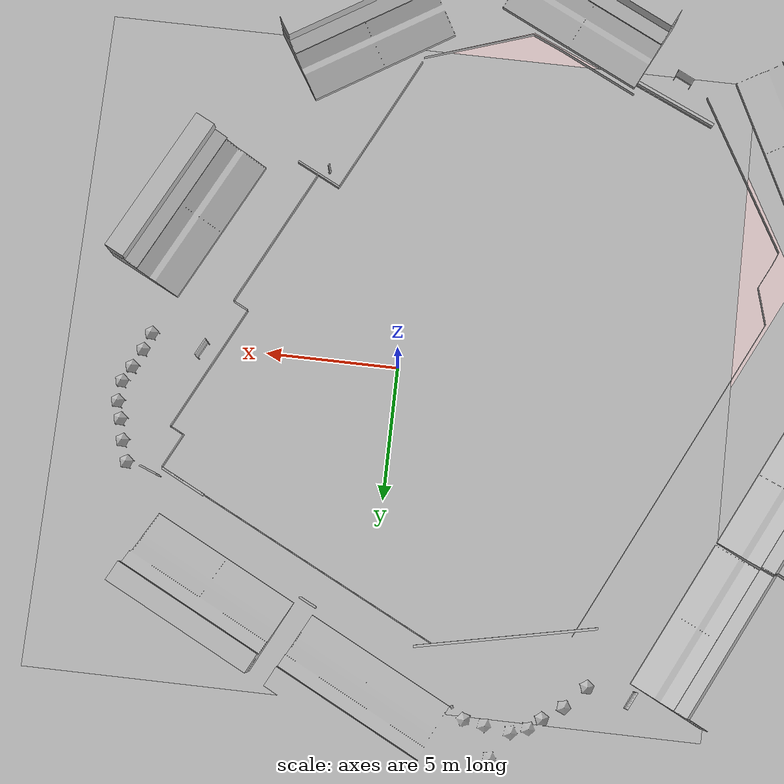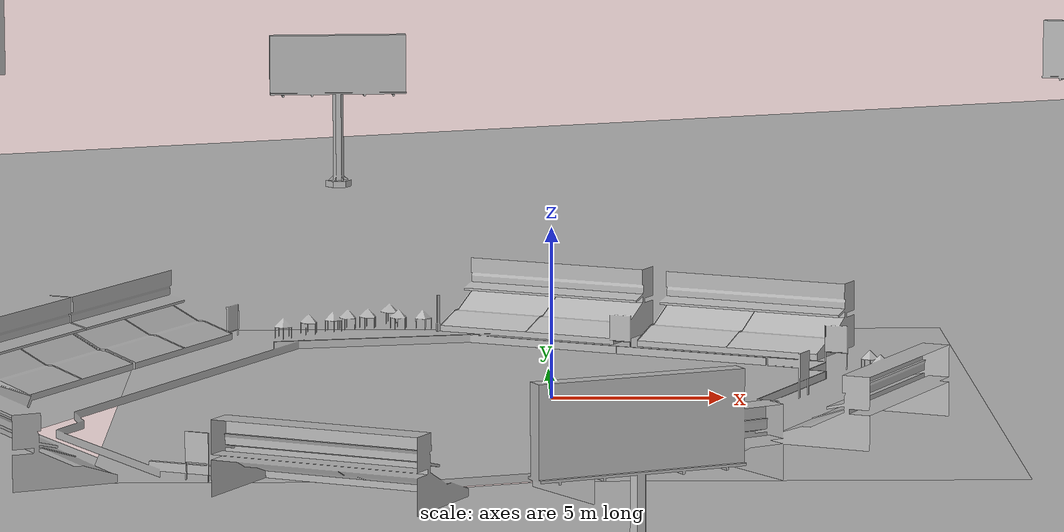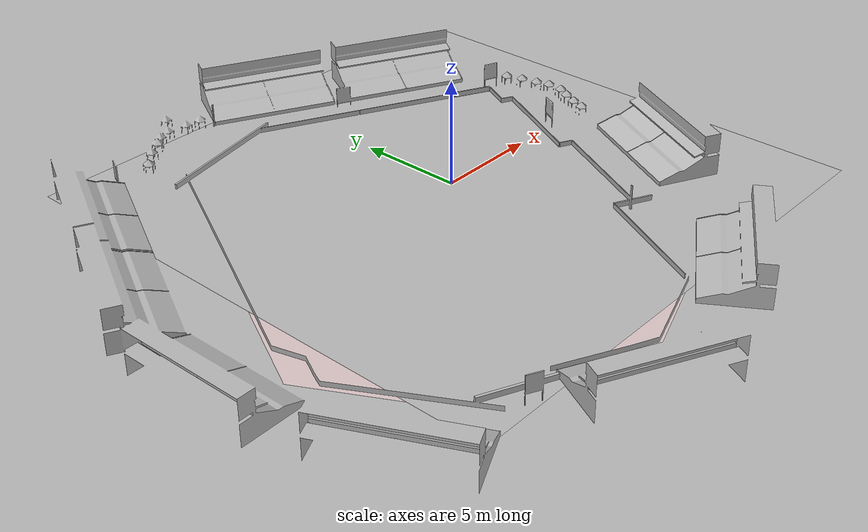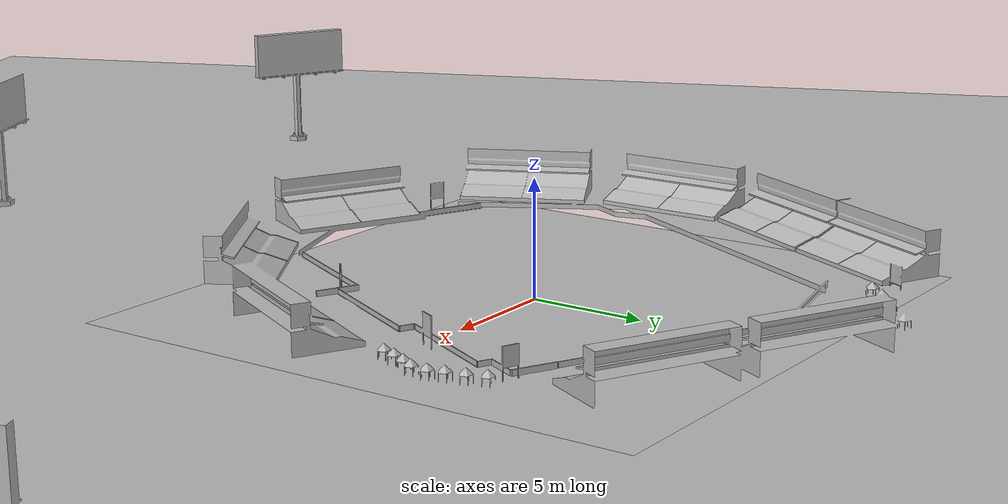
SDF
<?xml version='1.0' encoding='utf-8'?>
<sdf version="1.7">
<model name="template_model">
<link name="track">
<collision name="collision">
<pose>0 0 0 0 0 0</pose>
<geometry>
<mesh>
<uri>model://meshes/2022_april_open/2022_april_open_collision.dae</uri>
</mesh>
</geometry>
</collision>
<visual name="visual">
<pose>0 0 0 0 0 0</pose>
<geometry>
<mesh>
<uri>model://meshes/2022_april_open/2022_april_open.dae</uri>
</mesh>
</geometry>
</visual>
</link>
<link name="background">
<visual name="visual">
<pose>-2 0 0 0 0 0</pose>
<geometry>
<mesh>
<uri>model://meshes/2022_april_open/background.dae</uri>
</mesh>
</geometry>
</visual>
</link>
<static>1</static>
</model>
</sdf>
